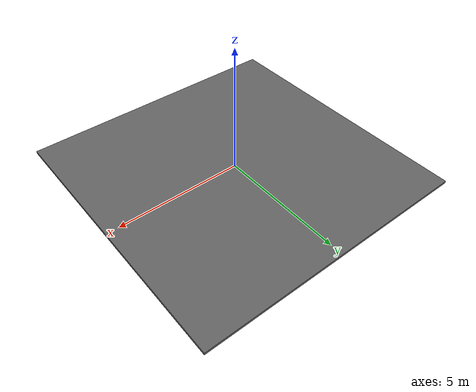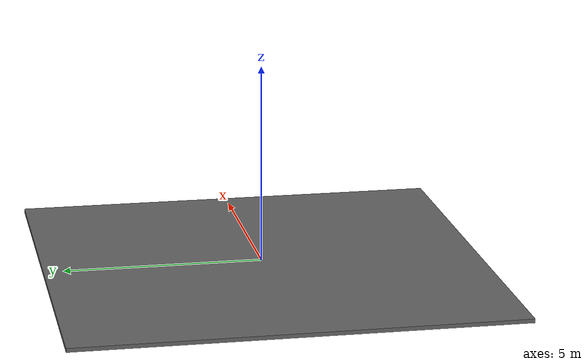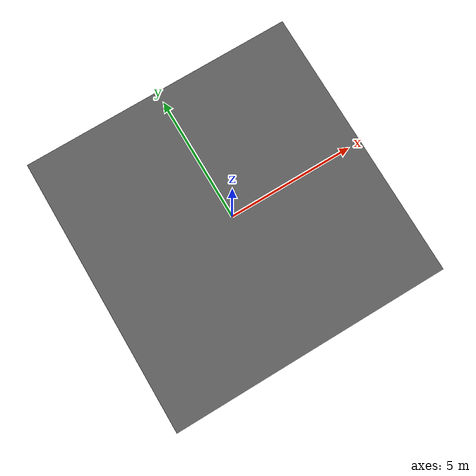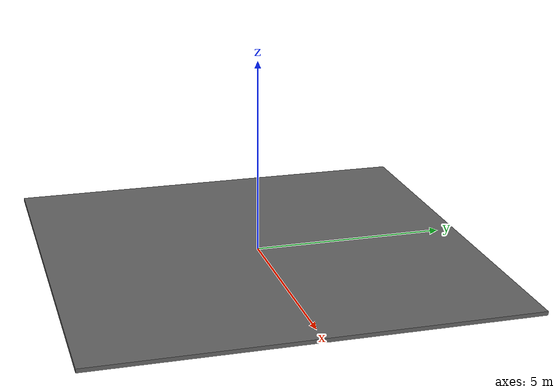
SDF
<?xml version="1.0"?>
<sdf version="1.6">

<world name="field_empty">

  <!--太阳 平行光-->
  <light name="sun" type="directional">
    <cast_shadows>true</cast_shadows>
    <pose>0 0 10 0 0 0</pose>
    <diffuse>0.8 0.8 0.8 1</diffuse>
    <specular>0.2 0.2 0.2 1</specular>
    <direction>-0.5 0.1 -0.9</direction>
  </light>

  <!--场地地板 11m x 11m 顶面正好在z=0-->
  <model name="field_floor">
    <static>true</static>
    <pose>0 0 -0.05 0 0 0</pose>
    <link name="floor_link">

      <visual name="floor_visual">
        <geometry>
          <box><size>11 11 0.1</size></box>
        </geometry>
        <material>
          <ambient>0.4 0.4 0.4 1</ambient>
          <diffuse>0.4 0.4 0.4 1</diffuse>
        </material>
      </visual>

      <collision name="floor_collision">
        <geometry>
          <box><size>11 11 0.1</size></box>
        </geometry>
      </collision>

    </link>
  </model>

</world>

</sdf>
